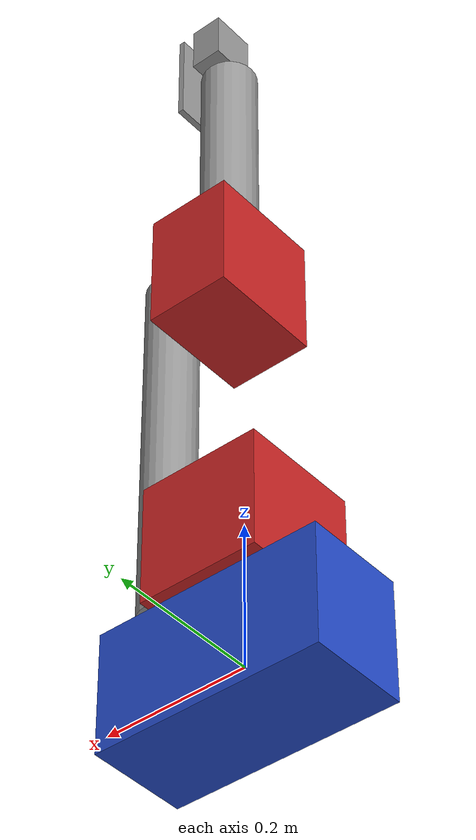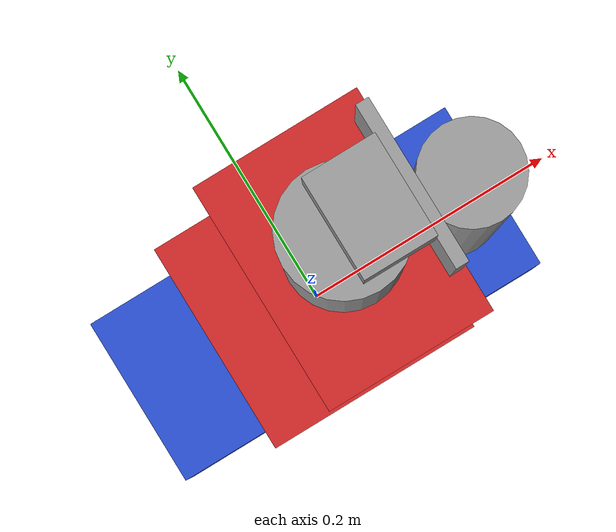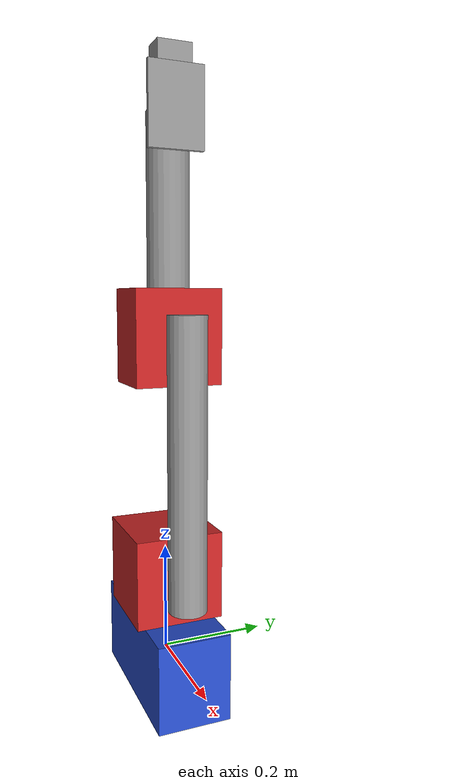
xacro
<?xml version="1.0"?>
<robot xmlns:xacro="http://www.ros.org/wiki/xacro">

    <link name="base_structure_link">
        <visual>
            <geometry>
                <box size="0.30670 0.1600 0.135"/>
            </geometry>
            <origin xyz="0 0 0" rpy="1.57 0 0" />
            <material name="blue"/>
        </visual>
        <collision>
            <geometry>
                <box size="0.30670 0.1600 0.135"/>
            </geometry>
            <material name="blue"/>
        </collision>
    </link>

    <link name="base_pivot_link">
        <visual>
            <geometry>
                <box size="0.1633 0.1633 0.1633"/>
            </geometry>
            <origin xyz="0 0 0" rpy="0 0 0"/>
            <material name="red"/>
        </visual>
        <collision>
            <geometry>
                <box size="0.1633 0.1633 0.1633"/>
            </geometry>
            <material name="red"/>
        </collision>
    </link>

    <link name="bicep_tube_link">
        <visual>
            <geometry>
                <cylinder radius="0.0348" length="0.520"/>
            </geometry>
            <origin xyz="0 0 0.220" rpy="0 0 0"/>
            <material name="grey"/>
        </visual>
        <collision>
            <geometry>
                <cylinder radius="0.0348" length="0.520"/>
            </geometry>
            <material name="grey"/>
        </collision>
    </link>

    <link name="bicep_gearbox_link">
        <visual>
            <geometry>
                <box size="0.11615 0.158 0.170"/>
            </geometry>
            <origin xyz="0 0 0" rpy="0 0 0"/>
            <material name="red"/>
        </visual>
        <collision>
            <geometry>
                <box size="0.11615 0.158 0.170"/>
            </geometry>
            <material name="red"/>
        </collision>
    </link>

   <link name="forearm_tube_link">
        <visual>
            <geometry>
                <cylinder radius="0.03810" length="0.300"/>
            </geometry>
            <origin xyz="0 0 0.150" rpy="0 0 0"/>
            <material name="grey"/>
        </visual>
        <collision>
            <geometry>
                <cylinder radius="0.03810" length="0.300"/>
            </geometry>
            <material name="grey"/>
        </collision>
    </link>

     <link name="bracket_connection_link">
        <visual>
            <geometry>
                <box size="0.008 0.10030 0.14015"/>
            </geometry>
            <origin xyz="0 0 0" rpy="0 0 0"/>
            <material name="grey"/>
        </visual>
        <collision>
            <geometry>
                <box size="0 0 0"/>
            </geometry>
            <material name="grey"/>
        </collision>
    </link>

    <link name="gripper_base_link">
        <visual>
            <geometry>
                <box size="0.04445 0.06200 0.07"/>
            </geometry>
            <origin xyz="0 0 0" rpy="0 0 0"/>
            <material name="grey"/>
        </visual>
        <collision>
            <geometry>
                <box size="0 0 0"/>
            </geometry>
            <material name="grey"/>
        </collision>
    </link>

    <joint name="joint1" type="continuous">
        <parent link="base_structure_link"/>
        <child link="base_pivot_link"/>
        <origin xyz="0 0 0.1618" rpy="0 0 0"/>
        <axis xyz="0 0 1"/>
    </joint>

    <joint name="joint2" type="continuous">
        <parent link="base_pivot_link"/>
        <child link="bicep_tube_link"/>
        <origin xyz="0.11645 0 0" rpy="0 0 0"/>
    </joint>

    <joint name="joint3" type="continuous">
        <parent link="bicep_tube_link"/>
        <child link="bicep_gearbox_link"/>
        <origin xyz="-0.092875 0 0.440" rpy="0 0 0"/>
        <axis xyz="1 0 0"/>
    </joint>

   <joint name="joint4" type="continuous">
        <parent link="bicep_gearbox_link"/>
        <child link="forearm_tube_link"/>
        <origin xyz="0 0 0.085" rpy="0 0 0"/>
        <axis xyz=" 0 0 1"/>
    </joint>

    <joint name="joint5" type="continuous">
        <parent link="forearm_tube_link"/>
        <child link="bracket_connection_link"/>
        <origin xyz="0.0421 0 0.3" rpy="0 0 0"/>
        <axis xyz=" 1 0 0"/>
    </joint>

    <joint name="joint6" type="continuous">
        <parent link="bracket_connection_link"/>
        <child link="gripper_base_link"/>
        <origin xyz="-0.026225 0 0.070075" rpy="0 0 0"/>
        <axis xyz=" 0 0 1"/>
    </joint>

</robot>
